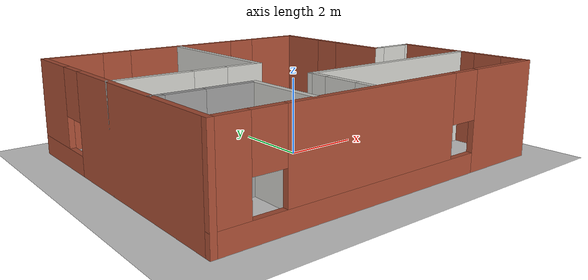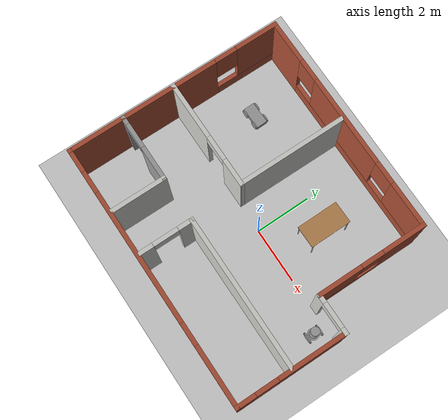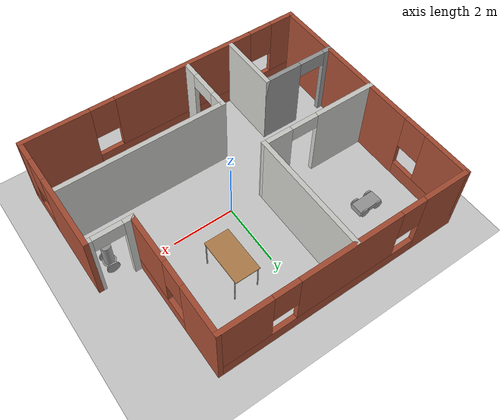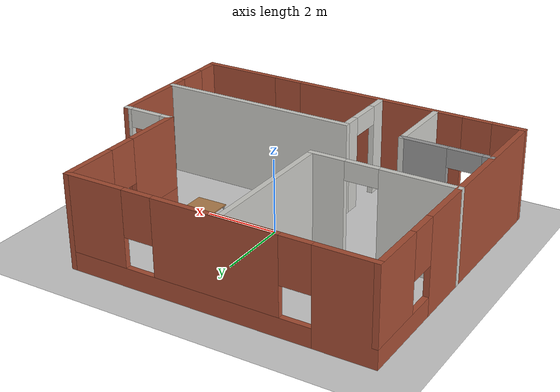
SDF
<sdf version="1.6">
 <world name="default">
  <plugin name="welcome" filename="libwelcome.so"/>
  <light name="sun" type="directional">
   <pose>0 0 10 0 -0 0</pose>
   <diffuse>0.8 0.8 0.8 1</diffuse>
   <specular>0.2 0.2 0.2 1</specular>
   <attenuation>
    <range>1000</range>
    <constant>0.9</constant>
    <linear>0.01</linear>
    <quadratic>0.001</quadratic>
   </attenuation>
   <direction>-0.5 0.1 -0.9</direction>
   <spot><inner_angle>0</inner_angle><outer_angle>0</outer_angle><falloff>0</falloff></spot>
  </light>
  <model name="ground_plane">
   <static>1</static>
   <link name="link">
    <collision name="collision">
     <geometry><plane><normal>0 0 1</normal><size>100 100</size></plane></geometry>
     <surface>
      <contact><collide_bitmask>65535</collide_bitmask></contact>
      <friction><ode><mu>100</mu><mu2>50</mu2></ode></friction>
     </surface>
    </collision>
    <visual name="visual">
     <cast_shadows>0</cast_shadows>
     <geometry><plane><normal>0 0 1</normal><size>100 100</size></plane></geometry>
     <material>
      <script><uri>file://media/materials/scripts/gazebo.material</uri><name>Gazebo/Grey</name></script>
     </material>
    </visual>
   </link>
  </model>
  <gravity>0 0 -9.8</gravity>
  <magnetic_field>6e-06 2.3e-05 -4.2e-05</magnetic_field>
  <atmosphere type="adiabatic"/>
  <physics type="ode">
   <max_step_size>0.001</max_step_size>
   <real_time_factor>1</real_time_factor>
   <real_time_update_rate>1000</real_time_update_rate>
  </physics>
  <scene><ambient>0.4 0.4 0.4 1</ambient><background>0.7 0.7 0.7 1</background><shadows>1</shadows></scene>
  <spherical_coordinates>
   <surface_model>EARTH_WGS84</surface_model>
   <latitude_deg>0</latitude_deg>
   <longitude_deg>0</longitude_deg>
   <elevation>0</elevation>
   <heading_deg>0</heading_deg>
  </spherical_coordinates>
  <model name="PROJECT1">
   <model name="PROJECT1">
    <model name="balancerobot">
     <link name="link_0">
      <inertial>
       <mass>1</mass>
       <inertia><ixx>0.145833</ixx><ixy>0</ixy><ixz>0</ixz><iyy>0.145833</iyy><iyz>0</iyz><izz>0.125</izz></inertia>
      </inertial>
      <pose>0.020222 -0.037562 -0.115563 0 -0 0</pose>
      <visual name="visual">
       <geometry><cylinder><radius>0.2</radius><length>0.01</length></cylinder></geometry>
       <material>
        <lighting>1</lighting>
        <script><uri>file://media/materials/scripts/gazebo.material</uri><name>Gazebo/Grey</name></script>
        <shader type="vertex"><normal_map>__default__</normal_map></shader>
        <ambient>0.3 0.3 0.3 1</ambient>
        <diffuse>0.7 0.7 0.7 1</diffuse>
        <specular>0.01 0.01 0.01 1</specular>
        <emissive>0 0 0 1</emissive>
       </material>
      </visual>
      <collision name="collision">
       <geometry><cylinder><radius>0.2</radius><length>0.01</length></cylinder></geometry>
       <surface>
        <friction>
         <ode><mu>1</mu><mu2>1</mu2><fdir1>0 0 0</fdir1><slip1>0</slip1><slip2>0</slip2></ode>
         <torsional>
          <coefficient>1</coefficient>
          <patch_radius>0</patch_radius>
          <surface_radius>0</surface_radius>
          <use_patch_radius>1</use_patch_radius>
          <ode><slip>0</slip></ode>
         </torsional>
        </friction>
        <bounce><restitution_coefficient>0</restitution_coefficient><threshold>1e+06</threshold></bounce>
        <contact>
         <collide_without_contact>0</collide_without_contact>
         <collide_without_contact_bitmask>1</collide_without_contact_bitmask>
         <collide_bitmask>1</collide_bitmask>
         <ode>
          <soft_cfm>0</soft_cfm>
          <soft_erp>0.2</soft_erp>
          <kp>1e+13</kp>
          <kd>1</kd>
          <max_vel>0.01</max_vel>
          <min_depth>0</min_depth>
         </ode>
         <bullet>
          <split_impulse>1</split_impulse>
          <split_impulse_penetration_threshold>-0.01</split_impulse_penetration_threshold>
          <soft_cfm>0</soft_cfm>
          <soft_erp>0.2</soft_erp>
          <kp>1e+13</kp>
          <kd>1</kd>
         </bullet>
        </contact>
       </surface>
      </collision>
     </link>
     <link name="link_1">
      <inertial>
       <mass>1</mass>
       <inertia><ixx>0.145833</ixx><ixy>0</ixy><ixz>0</ixz><iyy>0.145833</iyy><iyz>0</iyz><izz>0.125</izz></inertia>
      </inertial>
      <pose>0.020222 -0.187562 -0.165183 1.5707 -0 0</pose>
      <visual name="visual">
       <geometry><cylinder><radius>0.045</radius><length>0.11</length></cylinder></geometry>
       <material>
        <lighting>1</lighting>
        <script><uri>file://media/materials/scripts/gazebo.material</uri><name>Gazebo/Grey</name></script>
        <shader type="vertex"><normal_map>__default__</normal_map></shader>
        <ambient>0.3 0.3 0.3 1</ambient>
        <diffuse>0.7 0.7 0.7 1</diffuse>
        <specular>0.01 0.01 0.01 1</specular>
        <emissive>0 0 0 1</emissive>
       </material>
      </visual>
      <collision name="collision">
       <geometry><cylinder><radius>0.045</radius><length>0.11</length></cylinder></geometry>
       <surface>
        <friction>
         <ode><mu>1</mu><mu2>1</mu2><fdir1>0 0 0</fdir1><slip1>0</slip1><slip2>0</slip2></ode>
         <torsional>
          <coefficient>1</coefficient>
          <patch_radius>0</patch_radius>
          <surface_radius>0</surface_radius>
          <use_patch_radius>1</use_patch_radius>
          <ode><slip>0</slip></ode>
         </torsional>
        </friction>
        <bounce><restitution_coefficient>0</restitution_coefficient><threshold>1e+06</threshold></bounce>
        <contact>
         <collide_without_contact>0</collide_without_contact>
         <collide_without_contact_bitmask>1</collide_without_contact_bitmask>
         <collide_bitmask>1</collide_bitmask>
         <ode>
          <soft_cfm>0</soft_cfm>
          <soft_erp>0.2</soft_erp>
          <kp>1e+13</kp>
          <kd>1</kd>
          <max_vel>0.01</max_vel>
          <min_depth>0</min_depth>
         </ode>
         <bullet>
          <split_impulse>1</split_impulse>
          <split_impulse_penetration_threshold>-0.01</split_impulse_penetration_threshold>
          <soft_cfm>0</soft_cfm>
          <soft_erp>0.2</soft_erp>
          <kp>1e+13</kp>
          <kd>1</kd>
         </bullet>
        </contact>
       </surface>
      </collision>
     </link>
     <link name="link_1_clone">
      <inertial>
       <mass>1</mass>
       <inertia><ixx>0.145833</ixx><ixy>0</ixy><ixz>0</ixz><iyy>0.145833</iyy><iyz>0</iyz><izz>0.125</izz></inertia>
      </inertial>
      <pose>0.020222 0.112438 -0.165563 1.5707 -0 0</pose>
      <visual name="visual">
       <geometry><cylinder><radius>0.045</radius><length>0.11</length></cylinder></geometry>
       <material>
        <lighting>1</lighting>
        <script><uri>file://media/materials/scripts/gazebo.material</uri><name>Gazebo/Grey</name></script>
        <shader type="vertex"><normal_map>__default__</normal_map></shader>
        <ambient>0.3 0.3 0.3 1</ambient>
        <diffuse>0.7 0.7 0.7 1</diffuse>
        <specular>0.01 0.01 0.01 1</specular>
        <emissive>0 0 0 1</emissive>
       </material>
      </visual>
      <collision name="collision">
       <geometry><cylinder><radius>0.045</radius><length>0.11</length></cylinder></geometry>
       <surface>
        <friction>
         <ode><mu>1</mu><mu2>1</mu2><fdir1>0 0 0</fdir1><slip1>0</slip1><slip2>0</slip2></ode>
         <torsional>
          <coefficient>1</coefficient>
          <patch_radius>0</patch_radius>
          <surface_radius>0</surface_radius>
          <use_patch_radius>1</use_patch_radius>
          <ode><slip>0</slip></ode>
         </torsional>
        </friction>
        <bounce><restitution_coefficient>0</restitution_coefficient><threshold>1e+06</threshold></bounce>
        <contact>
         <collide_without_contact>0</collide_without_contact>
         <collide_without_contact_bitmask>1</collide_without_contact_bitmask>
         <collide_bitmask>1</collide_bitmask>
         <ode>
          <soft_cfm>0</soft_cfm>
          <soft_erp>0.2</soft_erp>
          <kp>1e+13</kp>
          <kd>1</kd>
          <max_vel>0.01</max_vel>
          <min_depth>0</min_depth>
         </ode>
         <bullet>
          <split_impulse>1</split_impulse>
          <split_impulse_penetration_threshold>-0.01</split_impulse_penetration_threshold>
          <soft_cfm>0</soft_cfm>
          <soft_erp>0.2</soft_erp>
          <kp>1e+13</kp>
          <kd>1</kd>
         </bullet>
        </contact>
       </surface>
      </collision>
     </link>
     <link name="link_2">
      <inertial>
       <mass>1</mass>
       <inertia><ixx>0.145833</ixx><ixy>0</ixy><ixz>0</ixz><iyy>0.145833</iyy><iyz>0</iyz><izz>0.125</izz></inertia>
      </inertial>
      <pose>0.020222 -0.267562 -0.165175 1.5707 -0 0</pose>
      <visual name="visual">
       <geometry><cylinder><radius>0.2</radius><length>0.05</length></cylinder></geometry>
       <material>
        <lighting>1</lighting>
        <script><uri>file://media/materials/scripts/gazebo.material</uri><name>Gazebo/Grey</name></script>
        <shader type="vertex"><normal_map>__default__</normal_map></shader>
        <ambient>0.3 0.3 0.3 1</ambient>
        <diffuse>0.7 0.7 0.7 1</diffuse>
        <specular>0.01 0.01 0.01 1</specular>
        <emissive>0 0 0 1</emissive>
       </material>
      </visual>
      <collision name="collision">
       <geometry><cylinder><radius>0.2</radius><length>0.05</length></cylinder></geometry>
       <surface>
        <friction>
         <ode><mu>1</mu><mu2>1</mu2><fdir1>0 0 0</fdir1><slip1>0</slip1><slip2>0</slip2></ode>
         <torsional>
          <coefficient>1</coefficient>
          <patch_radius>0</patch_radius>
          <surface_radius>0</surface_radius>
          <use_patch_radius>1</use_patch_radius>
          <ode><slip>0</slip></ode>
         </torsional>
        </friction>
        <bounce><restitution_coefficient>0</restitution_coefficient><threshold>1e+06</threshold></bounce>
        <contact>
         <collide_without_contact>0</collide_without_contact>
         <collide_without_contact_bitmask>1</collide_without_contact_bitmask>
         <collide_bitmask>1</collide_bitmask>
         <ode>
          <soft_cfm>0</soft_cfm>
          <soft_erp>0.2</soft_erp>
          <kp>1e+13</kp>
          <kd>1</kd>
          <max_vel>0.01</max_vel>
          <min_depth>0</min_depth>
         </ode>
         <bullet>
          <split_impulse>1</split_impulse>
          <split_impulse_penetration_threshold>-0.01</split_impulse_penetration_threshold>
          <soft_cfm>0</soft_cfm>
          <soft_erp>0.2</soft_erp>
          <kp>1e+13</kp>
          <kd>1</kd>
         </bullet>
        </contact>
       </surface>
      </collision>
     </link>
     <link name="link_2_clone">
      <inertial>
       <mass>1</mass>
       <inertia><ixx>0.145833</ixx><ixy>0</ixy><ixz>0</ixz><iyy>0.145833</iyy><iyz>0</iyz><izz>0.125</izz></inertia>
      </inertial>
      <pose>0.020222 0.192462 -0.165563 1.5707 -0 0</pose>
      <visual name="visual">
       <geometry><cylinder><radius>0.2</radius><length>0.05</length></cylinder></geometry>
       <material>
        <lighting>1</lighting>
        <script><uri>file://media/materials/scripts/gazebo.material</uri><name>Gazebo/Grey</name></script>
        <shader type="vertex"><normal_map>__default__</normal_map></shader>
        <ambient>0.3 0.3 0.3 1</ambient>
        <diffuse>0.7 0.7 0.7 1</diffuse>
        <specular>0.01 0.01 0.01 1</specular>
        <emissive>0 0 0 1</emissive>
       </material>
      </visual>
      <collision name="collision">
       <geometry><cylinder><radius>0.2</radius><length>0.05</length></cylinder></geometry>
       <surface>
        <friction>
         <ode><mu>1</mu><mu2>1</mu2><fdir1>0 0 0</fdir1><slip1>0</slip1><slip2>0</slip2></ode>
         <torsional>
          <coefficient>1</coefficient>
          <patch_radius>0</patch_radius>
          <surface_radius>0</surface_radius>
          <use_patch_radius>1</use_patch_radius>
          <ode><slip>0</slip></ode>
         </torsional>
        </friction>
        <bounce><restitution_coefficient>0</restitution_coefficient><threshold>1e+06</threshold></bounce>
        <contact>
         <collide_without_contact>0</collide_without_contact>
         <collide_without_contact_bitmask>1</collide_without_contact_bitmask>
         <collide_bitmask>1</collide_bitmask>
         <ode>
          <soft_cfm>0</soft_cfm>
          <soft_erp>0.2</soft_erp>
          <kp>1e+13</kp>
          <kd>1</kd>
          <max_vel>0.01</max_vel>
          <min_depth>0</min_depth>
         </ode>
         <bullet>
          <split_impulse>1</split_impulse>
          <split_impulse_penetration_threshold>-0.01</split_impulse_penetration_threshold>
          <soft_cfm>0</soft_cfm>
          <soft_erp>0.2</soft_erp>
          <kp>1e+13</kp>
          <kd>1</kd>
         </bullet>
        </contact>
       </surface>
      </collision>
     </link>
     <link name="link_3">
      <inertial>
       <mass>1</mass>
       <inertia><ixx>0.145833</ixx><ixy>0</ixy><ixz>0</ixz><iyy>0.145833</iyy><iyz>0</iyz><izz>0.125</izz></inertia>
      </inertial>
      <pose>0.020222 -0.037562 0.277437 0 -0 0</pose>
      <visual name="visual">
       <geometry><cylinder><radius>0.15</radius><length>0.8</length></cylinder></geometry>
       <material>
        <lighting>1</lighting>
        <script><uri>file://media/materials/scripts/gazebo.material</uri><name>Gazebo/Grey</name></script>
        <shader type="vertex"><normal_map>__default__</normal_map></shader>
        <ambient>0.3 0.3 0.3 1</ambient>
        <diffuse>0.7 0.7 0.7 1</diffuse>
        <specular>0.01 0.01 0.01 1</specular>
        <emissive>0 0 0 1</emissive>
       </material>
      </visual>
      <collision name="collision">
       <geometry><cylinder><radius>0.15</radius><length>0.8</length></cylinder></geometry>
       <surface>
        <friction>
         <ode><mu>1</mu><mu2>1</mu2><fdir1>0 0 0</fdir1><slip1>0</slip1><slip2>0</slip2></ode>
         <torsional>
          <coefficient>1</coefficient>
          <patch_radius>0</patch_radius>
          <surface_radius>0</surface_radius>
          <use_patch_radius>1</use_patch_radius>
          <ode><slip>0</slip></ode>
         </torsional>
        </friction>
        <bounce><restitution_coefficient>0</restitution_coefficient><threshold>1e+06</threshold></bounce>
        <contact>
         <collide_without_contact>0</collide_without_contact>
         <collide_without_contact_bitmask>1</collide_without_contact_bitmask>
         <collide_bitmask>1</collide_bitmask>
         <ode>
          <soft_cfm>0</soft_cfm>
          <soft_erp>0.2</soft_erp>
          <kp>1e+13</kp>
          <kd>1</kd>
          <max_vel>0.01</max_vel>
          <min_depth>0</min_depth>
         </ode>
         <bullet>
          <split_impulse>1</split_impulse>
          <split_impulse_penetration_threshold>-0.01</split_impulse_penetration_threshold>
          <soft_cfm>0</soft_cfm>
          <soft_erp>0.2</soft_erp>
          <kp>1e+13</kp>
          <kd>1</kd>
         </bullet>
        </contact>
       </surface>
      </collision>
     </link>
     <joint name="link_0_JOINT_2" type="fixed">
      <parent>link_0</parent>
      <child>link_1</child>
      <physics>
       <ode><limit><cfm>0</cfm><erp>0.2</erp></limit><suspension><cfm>0</cfm><erp>0.2</erp></suspension></ode>
      </physics>
     </joint>
     <joint name="link_0_JOINT_3" type="fixed">
      <parent>link_0</parent>
      <child>link_1_clone</child>
      <physics>
       <ode><limit><cfm>0</cfm><erp>0.2</erp></limit><suspension><cfm>0</cfm><erp>0.2</erp></suspension></ode>
      </physics>
     </joint>
     <joint name="link_0_JOINT_6" type="fixed">
      <parent>link_0</parent>
      <child>link_3</child>
      <physics>
       <ode><limit><cfm>0</cfm><erp>0.2</erp></limit><suspension><cfm>0</cfm><erp>0.2</erp></suspension></ode>
      </physics>
     </joint>
     <joint name="link_1_JOINT_4" type="revolute">
      <parent>link_1</parent>
      <child>link_2</child>
      <pose>-0 0 -0.02 0 -0 0</pose>
      <axis>
       <xyz>0 0 1</xyz>
       <limit>
        <lower>-1.79769e+308</lower>
        <upper>1.79769e+308</upper>
        <effort>-1</effort>
        <velocity>-1</velocity>
       </limit>
       <dynamics>
        <spring_reference>0</spring_reference>
        <spring_stiffness>0</spring_stiffness>
        <damping>0</damping>
       </dynamics>
      </axis>
      <physics>
       <ode><limit><cfm>0</cfm><erp>0.2</erp></limit><suspension><cfm>0</cfm><erp>0.2</erp></suspension></ode>
      </physics>
     </joint>
     <joint name="link_1_clone_JOINT_5" type="revolute">
      <parent>link_1_clone</parent>
      <child>link_2_clone</child>
      <axis>
       <xyz>1 0 0</xyz>
       <limit>
        <lower>-1.79769e+308</lower>
        <upper>1.79769e+308</upper>
        <effort>-1</effort>
        <velocity>-1</velocity>
       </limit>
       <dynamics>
        <spring_reference>0</spring_reference>
        <spring_stiffness>0</spring_stiffness>
        <damping>0</damping>
       </dynamics>
      </axis>
      <physics>
       <ode><limit><cfm>0</cfm><erp>0.2</erp></limit><suspension><cfm>0</cfm><erp>0.2</erp></suspension></ode>
      </physics>
     </joint>
     <static>0</static>
     <pose>2.02516 -0.247813 0.181894 0 -0 0</pose>
    </model>
    <model name="project1">
     <pose>-2.02515 0.247813 -0.181894 0 -0 0</pose>
     <link name="Wall_0">
      <pose>-0.675 3.85 0 0 -0 0</pose>
      <visual name="Wall_0_Visual_0">
       <pose>-3.28349 0 1.25 0 -0 0</pose>
       <geometry><box><size>1.58303 0.15 2.5</size></box></geometry>
       <material>
        <script><uri>file://media/materials/scripts/gazebo.material</uri><name>Gazebo/Bricks</name></script>
        <ambient>1 1 1 1</ambient>
       </material>
       <meta><layer>0</layer></meta>
      </visual>
      <collision name="Wall_0_Collision_0">
       <geometry><box><size>1.58303 0.15 2.5</size></box></geometry>
       <pose>-3.28349 0 1.25 0 -0 0</pose>
      </collision>
      <visual name="Wall_0_Visual_1">
       <pose>0.791513 0 0.25 0 -0 0</pose>
       <geometry><box><size>6.56697 0.15 0.5</size></box></geometry>
       <material>
        <script><uri>file://media/materials/scripts/gazebo.material</uri><name>Gazebo/Bricks</name></script>
        <ambient>1 1 1 1</ambient>
       </material>
       <meta><layer>0</layer></meta>
      </visual>
      <collision name="Wall_0_Collision_1">
       <geometry><box><size>6.56697 0.15 0.5</size></box></geometry>
       <pose>0.791513 0 0.25 0 -0 0</pose>
      </collision>
      <visual name="Wall_0_Visual_2">
       <pose>-0.042824 0 1.5 0 -0 0</pose>
       <geometry><box><size>3.2983 0.15 2</size></box></geometry>
       <material>
        <script><uri>file://media/materials/scripts/gazebo.material</uri><name>Gazebo/Bricks</name></script>
        <ambient>1 1 1 1</ambient>
       </material>
       <meta><layer>0</layer></meta>
      </visual>
      <collision name="Wall_0_Collision_2">
       <geometry><box><size>3.2983 0.15 2</size></box></geometry>
       <pose>-0.042824 0 1.5 0 -0 0</pose>
      </collision>
      <visual name="Wall_0_Visual_3">
       <pose>3.24066 0 1.5 0 -0 0</pose>
       <geometry><box><size>1.66867 0.15 2</size></box></geometry>
       <material>
        <script><uri>file://media/materials/scripts/gazebo.material</uri><name>Gazebo/Bricks</name></script>
        <ambient>1 1 1 1</ambient>
       </material>
       <meta><layer>0</layer></meta>
      </visual>
      <collision name="Wall_0_Collision_3">
       <geometry><box><size>1.66867 0.15 2</size></box></geometry>
       <pose>3.24066 0 1.5 0 -0 0</pose>
      </collision>
      <visual name="Wall_0_Visual_4">
       <pose>-2.09197 0 1.9 0 -0 0</pose>
       <geometry><box><size>0.8 0.15 1.2</size></box></geometry>
       <material>
        <script><uri>file://media/materials/scripts/gazebo.material</uri><name>Gazebo/Bricks</name></script>
        <ambient>1 1 1 1</ambient>
       </material>
       <meta><layer>0</layer></meta>
      </visual>
      <collision name="Wall_0_Collision_4">
       <geometry><box><size>0.8 0.15 1.2</size></box></geometry>
       <pose>-2.09197 0 1.9 0 -0 0</pose>
      </collision>
      <visual name="Wall_0_Visual_5">
       <pose>2.00633 0 1.9 0 -0 0</pose>
       <geometry><box><size>0.8 0.15 1.2</size></box></geometry>
       <material>
        <script><uri>file://media/materials/scripts/gazebo.material</uri><name>Gazebo/Bricks</name></script>
        <ambient>1 1 1 1</ambient>
       </material>
       <meta><layer>0</layer></meta>
      </visual>
      <collision name="Wall_0_Collision_5">
       <geometry><box><size>0.8 0.15 1.2</size></box></geometry>
       <pose>2.00633 0 1.9 0 -0 0</pose>
      </collision>
     </link>
     <link name="Wall_11">
      <collision name="Wall_11_Collision">
       <geometry><box><size>4 0.15 2.5</size></box></geometry>
       <pose>0 0 1.25 0 -0 0</pose>
      </collision>
      <visual name="Wall_11_Visual">
       <pose>0 0 1.25 0 -0 0</pose>
       <geometry><box><size>4 0.15 2.5</size></box></geometry>
       <material>
        <script><uri>file://media/materials/scripts/gazebo.material</uri><name>Gazebo/CeilingTiled</name></script>
        <ambient>1 1 1 1</ambient>
       </material>
       <meta><layer>0</layer></meta>
      </visual>
      <pose>-0.846184 1.90708 0 0 -0 -1.5707</pose>
     </link>
     <link name="Wall_12">
      <pose>-2.7605 -0.018 0 0 -0 3.14159</pose>
      <visual name="Wall_12_Visual_0">
       <pose>-1.48873 0 1.25 0 -0 0</pose>
       <geometry><box><size>1.00155 0.15 2.5</size></box></geometry>
       <material>
        <script><uri>file://media/materials/scripts/gazebo.material</uri><name>Gazebo/CeilingTiled</name></script>
        <ambient>1 1 1 1</ambient>
       </material>
       <meta><layer>0</layer></meta>
      </visual>
      <collision name="Wall_12_Collision_0">
       <geometry><box><size>1.00155 0.15 2.5</size></box></geometry>
       <pose>-1.48873 0 1.25 0 -0 0</pose>
      </collision>
      <visual name="Wall_12_Visual_1">
       <pose>0.950775 0 1.25 0 -0 0</pose>
       <geometry><box><size>2.07745 0.15 2.5</size></box></geometry>
       <material>
        <script><uri>file://media/materials/scripts/gazebo.material</uri><name>Gazebo/CeilingTiled</name></script>
        <ambient>1 1 1 1</ambient>
       </material>
       <meta><layer>0</layer></meta>
      </visual>
      <collision name="Wall_12_Collision_1">
       <geometry><box><size>2.07745 0.15 2.5</size></box></geometry>
       <pose>0.950775 0 1.25 0 -0 0</pose>
      </collision>
      <visual name="Wall_12_Visual_2">
       <pose>-0.537951 0 2.25 0 -0 0</pose>
       <geometry><box><size>0.9 0.15 0.5</size></box></geometry>
       <material>
        <script><uri>file://media/materials/scripts/gazebo.material</uri><name>Gazebo/CeilingTiled</name></script>
        <ambient>1 1 1 1</ambient>
       </material>
       <meta><layer>0</layer></meta>
      </visual>
      <collision name="Wall_12_Collision_2">
       <geometry><box><size>0.9 0.15 0.5</size></box></geometry>
       <pose>-0.537951 0 2.25 0 -0 0</pose>
      </collision>
     </link>
     <link name="Wall_14">
      <pose>-3.48233 -1.89942 0 0 -0 0</pose>
      <visual name="Wall_14_Visual_0">
       <pose>-1.09723 0 1.25 0 -0 0</pose>
       <geometry><box><size>0.305529 0.15 2.5</size></box></geometry>
       <material>
        <script><uri>file://media/materials/scripts/gazebo.material</uri><name>Gazebo/Grey</name></script>
        <ambient>1 1 1 1</ambient>
       </material>
       <meta><layer>0</layer></meta>
      </visual>
      <collision name="Wall_14_Collision_0">
       <geometry><box><size>0.305529 0.15 2.5</size></box></geometry>
       <pose>-1.09723 0 1.25 0 -0 0</pose>
      </collision>
      <visual name="Wall_14_Visual_1">
       <pose>0.602765 0 1.25 0 -0 0</pose>
       <geometry><box><size>1.29447 0.15 2.5</size></box></geometry>
       <material>
        <script><uri>file://media/materials/scripts/gazebo.material</uri><name>Gazebo/Grey</name></script>
        <ambient>1 1 1 1</ambient>
       </material>
       <meta><layer>0</layer></meta>
      </visual>
      <collision name="Wall_14_Collision_1">
       <geometry><box><size>1.29447 0.15 2.5</size></box></geometry>
       <pose>0.602765 0 1.25 0 -0 0</pose>
      </collision>
      <visual name="Wall_14_Visual_2">
       <pose>-0.494471 0 2.25 0 -0 0</pose>
       <geometry><box><size>0.9 0.15 0.5</size></box></geometry>
       <material>
        <script><uri>file://media/materials/scripts/gazebo.material</uri><name>Gazebo/Grey</name></script>
        <ambient>1 1 1 1</ambient>
       </material>
       <meta><layer>0</layer></meta>
      </visual>
      <collision name="Wall_14_Collision_2">
       <geometry><box><size>0.9 0.15 0.5</size></box></geometry>
       <pose>-0.494471 0 2.25 0 -0 0</pose>
      </collision>
     </link>
     <link name="Wall_15">
      <collision name="Wall_15_Collision">
       <geometry><box><size>2 0.15 2.5</size></box></geometry>
       <pose>0 0 1.25 0 -0 0</pose>
      </collision>
      <visual name="Wall_15_Visual">
       <pose>0 0 1.25 0 -0 0</pose>
       <geometry><box><size>2 0.15 2.5</size></box></geometry>
       <material>
        <script><uri>file://media/materials/scripts/gazebo.material</uri><name>Gazebo/CeilingTiled</name></script>
        <ambient>1 1 1 1</ambient>
       </material>
       <meta><layer>0</layer></meta>
      </visual>
      <pose>-2.30733 -2.82442 0 0 -0 -1.5708</pose>
     </link>
     <link name="Wall_18">
      <collision name="Wall_18_Collision">
       <geometry><box><size>5.5 0.15 2.5</size></box></geometry>
       <pose>0 0 1.25 0 -0 0</pose>
      </collision>
      <visual name="Wall_18_Visual">
       <pose>0 0 1.25 0 -0 0</pose>
       <geometry><box><size>5.5 0.15 2.5</size></box></geometry>
       <material>
        <script><uri>file://media/materials/scripts/gazebo.material</uri><name>Gazebo/CeilingTiled</name></script>
        <ambient>1 1 1 1</ambient>
       </material>
       <meta><layer>0</layer></meta>
      </visual>
      <pose>1.95311 -1.89942 0 0 -0 3.14159</pose>
     </link>
     <link name="Wall_19">
      <pose>-0.721888 -2.82442 0 0 -0 -1.5708</pose>
      <visual name="Wall_19_Visual_0">
       <pose>-0.71113 0 1.25 0 -0 0</pose>
       <geometry><box><size>0.577741 0.15 2.5</size></box></geometry>
       <material>
        <script><uri>file://media/materials/scripts/gazebo.material</uri><name>Gazebo/CeilingTiled</name></script>
        <ambient>1 1 1 1</ambient>
       </material>
       <meta><layer>0</layer></meta>
      </visual>
      <collision name="Wall_19_Collision_0">
       <geometry><box><size>0.577741 0.15 2.5</size></box></geometry>
       <pose>-0.71113 0 1.25 0 -0 0</pose>
      </collision>
      <visual name="Wall_19_Visual_1">
       <pose>0.73887 0 1.25 0 -0 0</pose>
       <geometry><box><size>0.522259 0.15 2.5</size></box></geometry>
       <material>
        <script><uri>file://media/materials/scripts/gazebo.material</uri><name>Gazebo/CeilingTiled</name></script>
        <ambient>1 1 1 1</ambient>
       </material>
       <meta><layer>0</layer></meta>
      </visual>
      <collision name="Wall_19_Collision_1">
       <geometry><box><size>0.522259 0.15 2.5</size></box></geometry>
       <pose>0.73887 0 1.25 0 -0 0</pose>
      </collision>
      <visual name="Wall_19_Visual_2">
       <pose>0.027741 0 2.25 0 -0 0</pose>
       <geometry><box><size>0.9 0.15 0.5</size></box></geometry>
       <material>
        <script><uri>file://media/materials/scripts/gazebo.material</uri><name>Gazebo/CeilingTiled</name></script>
        <ambient>1 1 1 1</ambient>
       </material>
       <meta><layer>0</layer></meta>
      </visual>
      <collision name="Wall_19_Collision_2">
       <geometry><box><size>0.9 0.15 0.5</size></box></geometry>
       <pose>0.027741 0 2.25 0 -0 0</pose>
      </collision>
     </link>
     <link name="Wall_2">
      <pose>3.325 1.925 0 0 -0 -1.5708</pose>
      <visual name="Wall_2_Visual_0">
       <pose>-1.21596 0 1.25 0 -0 0</pose>
       <geometry><box><size>1.56809 0.15 2.5</size></box></geometry>
       <material>
        <script><uri>file://media/materials/scripts/gazebo.material</uri><name>Gazebo/Bricks</name></script>
        <ambient>1 1 1 1</ambient>
       </material>
       <meta><layer>0</layer></meta>
      </visual>
      <collision name="Wall_2_Collision_0">
       <geometry><box><size>1.56809 0.15 2.5</size></box></geometry>
       <pose>-1.21596 0 1.25 0 -0 0</pose>
      </collision>
      <visual name="Wall_2_Visual_1">
       <pose>0.784043 0 0.25 0 -0 0</pose>
       <geometry><box><size>2.43191 0.15 0.5</size></box></geometry>
       <material>
        <script><uri>file://media/materials/scripts/gazebo.material</uri><name>Gazebo/Bricks</name></script>
        <ambient>1 1 1 1</ambient>
       </material>
       <meta><layer>0</layer></meta>
      </visual>
      <collision name="Wall_2_Collision_1">
       <geometry><box><size>2.43191 0.15 0.5</size></box></geometry>
       <pose>0.784043 0 0.25 0 -0 0</pose>
      </collision>
      <visual name="Wall_2_Visual_2">
       <pose>1.18404 0 1.5 0 -0 0</pose>
       <geometry><box><size>1.63191 0.15 2</size></box></geometry>
       <material>
        <script><uri>file://media/materials/scripts/gazebo.material</uri><name>Gazebo/Bricks</name></script>
        <ambient>1 1 1 1</ambient>
       </material>
       <meta><layer>0</layer></meta>
      </visual>
      <collision name="Wall_2_Collision_2">
       <geometry><box><size>1.63191 0.15 2</size></box></geometry>
       <pose>1.18404 0 1.5 0 -0 0</pose>
      </collision>
      <visual name="Wall_2_Visual_3">
       <pose>-0.031914 0 1.9 0 -0 0</pose>
       <geometry><box><size>0.8 0.15 1.2</size></box></geometry>
       <material>
        <script><uri>file://media/materials/scripts/gazebo.material</uri><name>Gazebo/Bricks</name></script>
        <ambient>1 1 1 1</ambient>
       </material>
       <meta><layer>0</layer></meta>
      </visual>
      <collision name="Wall_2_Collision_3">
       <geometry><box><size>0.8 0.15 1.2</size></box></geometry>
       <pose>-0.031914 0 1.9 0 -0 0</pose>
      </collision>
     </link>
     <link name="Wall_3">
      <pose>4 0 0 0 -0 0</pose>
      <visual name="Wall_3_Visual_0">
       <pose>-0.575232 0 1.25 0 -0 0</pose>
       <geometry><box><size>0.349537 0.15 2.5</size></box></geometry>
       <material>
        <script><uri>file://media/materials/scripts/gazebo.material</uri><name>Gazebo/CeilingTiled</name></script>
        <ambient>1 1 1 1</ambient>
       </material>
       <meta><layer>0</layer></meta>
      </visual>
      <collision name="Wall_3_Collision_0">
       <geometry><box><size>0.349537 0.15 2.5</size></box></geometry>
       <pose>-0.575232 0 1.25 0 -0 0</pose>
      </collision>
      <visual name="Wall_3_Visual_1">
       <pose>0.624768 0 1.25 0 -0 0</pose>
       <geometry><box><size>0.250463 0.15 2.5</size></box></geometry>
       <material>
        <script><uri>file://media/materials/scripts/gazebo.material</uri><name>Gazebo/CeilingTiled</name></script>
        <ambient>1 1 1 1</ambient>
       </material>
       <meta><layer>0</layer></meta>
      </visual>
      <collision name="Wall_3_Collision_1">
       <geometry><box><size>0.250463 0.15 2.5</size></box></geometry>
       <pose>0.624768 0 1.25 0 -0 0</pose>
      </collision>
      <visual name="Wall_3_Visual_2">
       <pose>0.049537 0 2.25 0 -0 0</pose>
       <geometry><box><size>0.9 0.15 0.5</size></box></geometry>
       <material>
        <script><uri>file://media/materials/scripts/gazebo.material</uri><name>Gazebo/CeilingTiled</name></script>
        <ambient>1 1 1 1</ambient>
       </material>
       <meta><layer>0</layer></meta>
      </visual>
      <collision name="Wall_3_Collision_2">
       <geometry><box><size>0.9 0.15 0.5</size></box></geometry>
       <pose>0.049537 0 2.25 0 -0 0</pose>
      </collision>
     </link>
     <link name="Wall_5">
      <pose>4.675 -1.925 0 0 -0 -1.5708</pose>
      <visual name="Wall_5_Visual_0">
       <pose>-0.766666 0 1.25 0 -0 0</pose>
       <geometry><box><size>2.46667 0.15 2.5</size></box></geometry>
       <material>
        <script><uri>file://media/materials/scripts/gazebo.material</uri><name>Gazebo/Bricks</name></script>
        <ambient>1 1 1 1</ambient>
       </material>
       <meta><layer>0</layer></meta>
      </visual>
      <collision name="Wall_5_Collision_0">
       <geometry><box><size>2.46667 0.15 2.5</size></box></geometry>
       <pose>-0.766666 0 1.25 0 -0 0</pose>
      </collision>
      <visual name="Wall_5_Visual_1">
       <pose>1.23333 0 0.25 0 -0 0</pose>
       <geometry><box><size>1.53333 0.15 0.5</size></box></geometry>
       <material>
        <script><uri>file://media/materials/scripts/gazebo.material</uri><name>Gazebo/Bricks</name></script>
        <ambient>1 1 1 1</ambient>
       </material>
       <meta><layer>0</layer></meta>
      </visual>
      <collision name="Wall_5_Collision_1">
       <geometry><box><size>1.53333 0.15 0.5</size></box></geometry>
       <pose>1.23333 0 0.25 0 -0 0</pose>
      </collision>
      <visual name="Wall_5_Visual_2">
       <pose>1.63333 0 1.5 0 -0 0</pose>
       <geometry><box><size>0.733332 0.15 2</size></box></geometry>
       <material>
        <script><uri>file://media/materials/scripts/gazebo.material</uri><name>Gazebo/Bricks</name></script>
        <ambient>1 1 1 1</ambient>
       </material>
       <meta><layer>0</layer></meta>
      </visual>
      <collision name="Wall_5_Collision_2">
       <geometry><box><size>0.733332 0.15 2</size></box></geometry>
       <pose>1.63333 0 1.5 0 -0 0</pose>
      </collision>
      <visual name="Wall_5_Visual_3">
       <pose>0.866668 0 1.9 0 -0 0</pose>
       <geometry><box><size>0.8 0.15 1.2</size></box></geometry>
       <material>
        <script><uri>file://media/materials/scripts/gazebo.material</uri><name>Gazebo/Bricks</name></script>
        <ambient>1 1 1 1</ambient>
       </material>
       <meta><layer>0</layer></meta>
      </visual>
      <collision name="Wall_5_Collision_3">
       <geometry><box><size>0.8 0.15 1.2</size></box></geometry>
       <pose>0.866668 0 1.9 0 -0 0</pose>
      </collision>
     </link>
     <link name="Wall_8">
      <pose>0 -3.85 0 0 -0 3.14159</pose>
      <visual name="Wall_8_Visual_0">
       <pose>-3.64142 0 1.25 0 -0 0</pose>
       <geometry><box><size>2.21716 0.15 2.5</size></box></geometry>
       <material>
        <script><uri>file://media/materials/scripts/gazebo.material</uri><name>Gazebo/Bricks</name></script>
        <ambient>1 1 1 1</ambient>
       </material>
       <meta><layer>0</layer></meta>
      </visual>
      <collision name="Wall_8_Collision_0">
       <geometry><box><size>2.21716 0.15 2.5</size></box></geometry>
       <pose>-3.64142 0 1.25 0 -0 0</pose>
      </collision>
      <visual name="Wall_8_Visual_1">
       <pose>1.10858 0 0.25 0 -0 0</pose>
       <geometry><box><size>7.28284 0.15 0.5</size></box></geometry>
       <material>
        <script><uri>file://media/materials/scripts/gazebo.material</uri><name>Gazebo/Bricks</name></script>
        <ambient>1 1 1 1</ambient>
       </material>
       <meta><layer>0</layer></meta>
      </visual>
      <collision name="Wall_8_Collision_1">
       <geometry><box><size>7.28284 0.15 0.5</size></box></geometry>
       <pose>1.10858 0 0.25 0 -0 0</pose>
      </collision>
      <visual name="Wall_8_Visual_2">
       <pose>0.664894 0 1.5 0 -0 0</pose>
       <geometry><box><size>4.79546 0.15 2</size></box></geometry>
       <material>
        <script><uri>file://media/materials/scripts/gazebo.material</uri><name>Gazebo/Bricks</name></script>
        <ambient>1 1 1 1</ambient>
       </material>
       <meta><layer>0</layer></meta>
      </visual>
      <collision name="Wall_8_Collision_2">
       <geometry><box><size>4.79546 0.15 2</size></box></geometry>
       <pose>0.664894 0 1.5 0 -0 0</pose>
      </collision>
      <visual name="Wall_8_Visual_3">
       <pose>4.30631 0 1.5 0 -0 0</pose>
       <geometry><box><size>0.887375 0.15 2</size></box></geometry>
       <material>
        <script><uri>file://media/materials/scripts/gazebo.material</uri><name>Gazebo/Bricks</name></script>
        <ambient>1 1 1 1</ambient>
       </material>
       <meta><layer>0</layer></meta>
      </visual>
      <collision name="Wall_8_Collision_3">
       <geometry><box><size>0.887375 0.15 2</size></box></geometry>
       <pose>4.30631 0 1.5 0 -0 0</pose>
      </collision>
      <visual name="Wall_8_Visual_4">
       <pose>-2.13284 0 1.9 0 -0 0</pose>
       <geometry><box><size>0.8 0.15 1.2</size></box></geometry>
       <material>
        <script><uri>file://media/materials/scripts/gazebo.material</uri><name>Gazebo/Bricks</name></script>
        <ambient>1 1 1 1</ambient>
       </material>
       <meta><layer>0</layer></meta>
      </visual>
      <collision name="Wall_8_Collision_4">
       <geometry><box><size>0.8 0.15 1.2</size></box></geometry>
       <pose>-2.13284 0 1.9 0 -0 0</pose>
      </collision>
      <visual name="Wall_8_Visual_5">
       <pose>3.46263 0 1.9 0 -0 0</pose>
       <geometry><box><size>0.8 0.15 1.2</size></box></geometry>
       <material>
        <script><uri>file://media/materials/scripts/gazebo.material</uri><name>Gazebo/Bricks</name></script>
        <ambient>1 1 1 1</ambient>
       </material>
       <meta><layer>0</layer></meta>
      </visual>
      <collision name="Wall_8_Collision_5">
       <geometry><box><size>0.8 0.15 1.2</size></box></geometry>
       <pose>3.46263 0 1.9 0 -0 0</pose>
      </collision>
     </link>
     <link name="Wall_9">
      <pose>-4.675 0 0 0 -0 1.5708</pose>
      <visual name="Wall_9_Visual_0">
       <pose>-1.19161 0 1.25 0 -0 0</pose>
       <geometry><box><size>5.46679 0.15 2.5</size></box></geometry>
       <material>
        <script><uri>file://media/materials/scripts/gazebo.material</uri><name>Gazebo/Bricks</name></script>
        <ambient>1 1 1 1</ambient>
       </material>
       <meta><layer>0</layer></meta>
      </visual>
      <collision name="Wall_9_Collision_0">
       <geometry><box><size>5.46679 0.15 2.5</size></box></geometry>
       <pose>-1.19161 0 1.25 0 -0 0</pose>
      </collision>
      <visual name="Wall_9_Visual_1">
       <pose>2.73339 0 0.25 0 -0 0</pose>
       <geometry><box><size>2.38321 0.15 0.5</size></box></geometry>
       <material>
        <script><uri>file://media/materials/scripts/gazebo.material</uri><name>Gazebo/Bricks</name></script>
        <ambient>1 1 1 1</ambient>
       </material>
       <meta><layer>0</layer></meta>
      </visual>
      <collision name="Wall_9_Collision_1">
       <geometry><box><size>2.38321 0.15 0.5</size></box></geometry>
       <pose>2.73339 0 0.25 0 -0 0</pose>
      </collision>
      <visual name="Wall_9_Visual_2">
       <pose>3.1334 0 1.5 0 -0 0</pose>
       <geometry><box><size>1.58321 0.15 2</size></box></geometry>
       <material>
        <script><uri>file://media/materials/scripts/gazebo.material</uri><name>Gazebo/Bricks</name></script>
        <ambient>1 1 1 1</ambient>
       </material>
       <meta><layer>0</layer></meta>
      </visual>
      <collision name="Wall_9_Collision_2">
       <geometry><box><size>1.58321 0.15 2</size></box></geometry>
       <pose>3.1334 0 1.5 0 -0 0</pose>
      </collision>
      <visual name="Wall_9_Visual_3">
       <pose>1.94179 0 1.9 0 -0 0</pose>
       <geometry><box><size>0.8 0.15 1.2</size></box></geometry>
       <material>
        <script><uri>file://media/materials/scripts/gazebo.material</uri><name>Gazebo/Bricks</name></script>
        <ambient>1 1 1 1</ambient>
       </material>
       <meta><layer>0</layer></meta>
      </visual>
      <collision name="Wall_9_Collision_3">
       <geometry><box><size>0.8 0.15 1.2</size></box></geometry>
       <pose>1.94179 0 1.9 0 -0 0</pose>
      </collision>
     </link>
     <static>1</static>
    </model>
    <static>0</static>
    <pose>-2e-06 -0 0 0 -0 0</pose>
   </model>
   <static>0</static>
   <pose>1.77851 -0.171548 0.183713 0.000804 -0 0</pose>
  </model>
  <model name="table">
   <static>1</static>
   <link name="link">
    <collision name="surface">
     <pose>0 0 1 0 -0 0</pose>
     <geometry><box><size>1.5 0.8 0.03</size></box></geometry>
     <surface><friction><ode><mu>0.6</mu><mu2>0.6</mu2></ode></friction></surface>
    </collision>
    <visual name="visual1">
     <pose>0 0 1 0 -0 0</pose>
     <geometry><box><size>1.5 0.8 0.03</size></box></geometry>
     <material>
      <script><uri>file://media/materials/scripts/gazebo.material</uri><name>Gazebo/Wood</name></script>
     </material>
    </visual>
    <collision name="front_left_leg">
     <pose>0.68 0.38 0.5 0 -0 0</pose>
     <geometry><cylinder><radius>0.02</radius><length>1</length></cylinder></geometry>
    </collision>
    <visual name="front_left_leg">
     <pose>0.68 0.38 0.5 0 -0 0</pose>
     <geometry><cylinder><radius>0.02</radius><length>1</length></cylinder></geometry>
     <material>
      <script><uri>file://media/materials/scripts/gazebo.material</uri><name>Gazebo/Grey</name></script>
     </material>
    </visual>
    <collision name="front_right_leg">
     <pose>0.68 -0.38 0.5 0 -0 0</pose>
     <geometry><cylinder><radius>0.02</radius><length>1</length></cylinder></geometry>
    </collision>
    <visual name="front_right_leg">
     <pose>0.68 -0.38 0.5 0 -0 0</pose>
     <geometry><cylinder><radius>0.02</radius><length>1</length></cylinder></geometry>
     <material>
      <script><uri>file://media/materials/scripts/gazebo.material</uri><name>Gazebo/Grey</name></script>
     </material>
    </visual>
    <collision name="back_right_leg">
     <pose>-0.68 -0.38 0.5 0 -0 0</pose>
     <geometry><cylinder><radius>0.02</radius><length>1</length></cylinder></geometry>
    </collision>
    <visual name="back_right_leg">
     <pose>-0.68 -0.38 0.5 0 -0 0</pose>
     <geometry><cylinder><radius>0.02</radius><length>1</length></cylinder></geometry>
     <material>
      <script><uri>file://media/materials/scripts/gazebo.material</uri><name>Gazebo/Grey</name></script>
     </material>
    </visual>
    <collision name="back_left_leg">
     <pose>-0.68 0.38 0.5 0 -0 0</pose>
     <geometry><cylinder><radius>0.02</radius><length>1</length></cylinder></geometry>
    </collision>
    <visual name="back_left_leg">
     <pose>-0.68 0.38 0.5 0 -0 0</pose>
     <geometry><cylinder><radius>0.02</radius><length>1</length></cylinder></geometry>
     <material>
      <script><uri>file://media/materials/scripts/gazebo.material</uri><name>Gazebo/Grey</name></script>
     </material>
    </visual>
   </link>
   <pose>1.1748 1.73789 0 0 0 -1.56262</pose>
  </model>
  <model name="4wheelRobot">
   <link name="link_0">
    <inertial>
     <mass>1</mass>
     <inertia>
      <ixx>0.166667</ixx>
      <ixy>0</ixy>
      <ixz>0</ixz>
      <iyy>0.166667</iyy>
      <iyz>0</iyz>
      <izz>0.166667</izz>
     </inertia>
    </inertial>
    <pose>0 0 -0.015999 0 -0 0</pose>
    <visual name="visual">
     <geometry><box><size>0.8 0.4 0.2</size></box></geometry>
     <material>
      <lighting>1</lighting>
      <script><uri>file://media/materials/scripts/gazebo.material</uri><name>Gazebo/Grey</name></script>
      <shader type="pixel"><normal_map>__default__</normal_map></shader>
      <ambient>0.3 0.3 0.3 1</ambient>
      <diffuse>0.7 0.7 0.7 1</diffuse>
      <specular>0.01 0.01 0.01 1</specular>
      <emissive>0 0 0 1</emissive>
     </material>
    </visual>
    <collision name="collision">
     <geometry><box><size>0.8 0.4 0.2</size></box></geometry>
     <surface>
      <friction>
       <ode><mu>1</mu><mu2>1</mu2><fdir1>0 0 0</fdir1><slip1>0</slip1><slip2>0</slip2></ode>
       <torsional>
        <coefficient>1</coefficient>
        <patch_radius>0</patch_radius>
        <surface_radius>0</surface_radius>
        <use_patch_radius>1</use_patch_radius>
        <ode><slip>0</slip></ode>
       </torsional>
      </friction>
      <bounce><restitution_coefficient>0</restitution_coefficient><threshold>1e+06</threshold></bounce>
      <contact>
       <collide_without_contact>0</collide_without_contact>
       <collide_without_contact_bitmask>1</collide_without_contact_bitmask>
       <collide_bitmask>1</collide_bitmask>
       <ode>
        <soft_cfm>0</soft_cfm>
        <soft_erp>0.2</soft_erp>
        <kp>1e+13</kp>
        <kd>1</kd>
        <max_vel>0.01</max_vel>
        <min_depth>0</min_depth>
       </ode>
       <bullet>
        <split_impulse>1</split_impulse>
        <split_impulse_penetration_threshold>-0.01</split_impulse_penetration_threshold>
        <soft_cfm>0</soft_cfm>
        <soft_erp>0.2</soft_erp>
        <kp>1e+13</kp>
        <kd>1</kd>
       </bullet>
      </contact>
     </surface>
    </collision>
   </link>
   <link name="link_1">
    <inertial>
     <mass>1</mass>
     <inertia><ixx>0.145833</ixx><ixy>0</ixy><ixz>0</ixz><iyy>0.145833</iyy><iyz>0</iyz><izz>0.125</izz></inertia>
    </inertial>
    <pose>0.25 -0.225014 0.003996 1.5707 -0 0</pose>
    <visual name="visual">
     <geometry><cylinder><radius>0.15</radius><length>0.05</length></cylinder></geometry>
     <material>
      <lighting>1</lighting>
      <script><uri>file://media/materials/scripts/gazebo.material</uri><name>Gazebo/Grey</name></script>
      <shader type="pixel"><normal_map>__default__</normal_map></shader>
      <ambient>0.3 0.3 0.3 1</ambient>
      <diffuse>0.7 0.7 0.7 1</diffuse>
      <specular>0.01 0.01 0.01 1</specular>
      <emissive>0 0 0 1</emissive>
     </material>
    </visual>
    <collision name="collision">
     <geometry><cylinder><radius>0.15</radius><length>0.05</length></cylinder></geometry>
     <surface>
      <friction>
       <ode><mu>1</mu><mu2>1</mu2><fdir1>0 0 0</fdir1><slip1>0</slip1><slip2>0</slip2></ode>
       <torsional>
        <coefficient>1</coefficient>
        <patch_radius>0</patch_radius>
        <surface_radius>0</surface_radius>
        <use_patch_radius>1</use_patch_radius>
        <ode><slip>0</slip></ode>
       </torsional>
      </friction>
      <bounce><restitution_coefficient>0</restitution_coefficient><threshold>1e+06</threshold></bounce>
      <contact>
       <collide_without_contact>0</collide_without_contact>
       <collide_without_contact_bitmask>1</collide_without_contact_bitmask>
       <collide_bitmask>1</collide_bitmask>
       <ode>
        <soft_cfm>0</soft_cfm>
        <soft_erp>0.2</soft_erp>
        <kp>1e+13</kp>
        <kd>1</kd>
        <max_vel>0.01</max_vel>
        <min_depth>0</min_depth>
       </ode>
       <bullet>
        <split_impulse>1</split_impulse>
        <split_impulse_penetration_threshold>-0.01</split_impulse_penetration_threshold>
        <soft_cfm>0</soft_cfm>
        <soft_erp>0.2</soft_erp>
        <kp>1e+13</kp>
        <kd>1</kd>
       </bullet>
      </contact>
     </surface>
    </collision>
   </link>
   <link name="link_1_clone">
    <inertial>
     <mass>1</mass>
     <inertia><ixx>0.145833</ixx><ixy>0</ixy><ixz>0</ixz><iyy>0.145833</iyy><iyz>0</iyz><izz>0.125</izz></inertia>
    </inertial>
    <pose>-0.25 0.225014 0.004001 1.5707 -0 0</pose>
    <visual name="visual">
     <geometry><cylinder><radius>0.15</radius><length>0.05</length></cylinder></geometry>
     <material>
      <lighting>1</lighting>
      <script><uri>file://media/materials/scripts/gazebo.material</uri><name>Gazebo/Grey</name></script>
      <shader type="pixel"><normal_map>__default__</normal_map></shader>
      <ambient>0.3 0.3 0.3 1</ambient>
      <diffuse>0.7 0.7 0.7 1</diffuse>
      <specular>0.01 0.01 0.01 1</specular>
      <emissive>0 0 0 1</emissive>
     </material>
    </visual>
    <collision name="collision">
     <geometry><cylinder><radius>0.15</radius><length>0.05</length></cylinder></geometry>
     <surface>
      <friction>
       <ode><mu>1</mu><mu2>1</mu2><fdir1>0 0 0</fdir1><slip1>0</slip1><slip2>0</slip2></ode>
       <torsional>
        <coefficient>1</coefficient>
        <patch_radius>0</patch_radius>
        <surface_radius>0</surface_radius>
        <use_patch_radius>1</use_patch_radius>
        <ode><slip>0</slip></ode>
       </torsional>
      </friction>
      <bounce><restitution_coefficient>0</restitution_coefficient><threshold>1e+06</threshold></bounce>
      <contact>
       <collide_without_contact>0</collide_without_contact>
       <collide_without_contact_bitmask>1</collide_without_contact_bitmask>
       <collide_bitmask>1</collide_bitmask>
       <ode>
        <soft_cfm>0</soft_cfm>
        <soft_erp>0.2</soft_erp>
        <kp>1e+13</kp>
        <kd>1</kd>
        <max_vel>0.01</max_vel>
        <min_depth>0</min_depth>
       </ode>
       <bullet>
        <split_impulse>1</split_impulse>
        <split_impulse_penetration_threshold>-0.01</split_impulse_penetration_threshold>
        <soft_cfm>0</soft_cfm>
        <soft_erp>0.2</soft_erp>
        <kp>1e+13</kp>
        <kd>1</kd>
       </bullet>
      </contact>
     </surface>
    </collision>
   </link>
   <link name="link_1_clone_0">
    <inertial>
     <mass>1</mass>
     <inertia><ixx>0.145833</ixx><ixy>0</ixy><ixz>0</ixz><iyy>0.145833</iyy><iyz>0</iyz><izz>0.125</izz></inertia>
    </inertial>
    <pose>-0.25 -0.225014 0.004001 1.5707 -0 0</pose>
    <visual name="visual">
     <geometry><cylinder><radius>0.15</radius><length>0.05</length></cylinder></geometry>
     <material>
      <lighting>1</lighting>
      <script><uri>file://media/materials/scripts/gazebo.material</uri><name>Gazebo/Grey</name></script>
      <shader type="pixel"><normal_map>__default__</normal_map></shader>
      <ambient>0.3 0.3 0.3 1</ambient>
      <diffuse>0.7 0.7 0.7 1</diffuse>
      <specular>0.01 0.01 0.01 1</specular>
      <emissive>0 0 0 1</emissive>
     </material>
    </visual>
    <collision name="collision">
     <geometry><cylinder><radius>0.15</radius><length>0.05</length></cylinder></geometry>
     <surface>
      <friction>
       <ode><mu>1</mu><mu2>1</mu2><fdir1>0 0 0</fdir1><slip1>0</slip1><slip2>0</slip2></ode>
       <torsional>
        <coefficient>1</coefficient>
        <patch_radius>0</patch_radius>
        <surface_radius>0</surface_radius>
        <use_patch_radius>1</use_patch_radius>
        <ode><slip>0</slip></ode>
       </torsional>
      </friction>
      <bounce><restitution_coefficient>0</restitution_coefficient><threshold>1e+06</threshold></bounce>
      <contact>
       <collide_without_contact>0</collide_without_contact>
       <collide_without_contact_bitmask>1</collide_without_contact_bitmask>
       <collide_bitmask>1</collide_bitmask>
       <ode>
        <soft_cfm>0</soft_cfm>
        <soft_erp>0.2</soft_erp>
        <kp>1e+13</kp>
        <kd>1</kd>
        <max_vel>0.01</max_vel>
        <min_depth>0</min_depth>
       </ode>
       <bullet>
        <split_impulse>1</split_impulse>
        <split_impulse_penetration_threshold>-0.01</split_impulse_penetration_threshold>
        <soft_cfm>0</soft_cfm>
        <soft_erp>0.2</soft_erp>
        <kp>1e+13</kp>
        <kd>1</kd>
       </bullet>
      </contact>
     </surface>
    </collision>
   </link>
   <link name="link_1_clone_1">
    <inertial>
     <mass>1</mass>
     <inertia><ixx>0.145833</ixx><ixy>0</ixy><ixz>0</ixz><iyy>0.145833</iyy><iyz>0</iyz><izz>0.125</izz></inertia>
    </inertial>
    <pose>0.25 0.225014 0.004001 1.5707 -0 0</pose>
    <visual name="visual">
     <geometry><cylinder><radius>0.15</radius><length>0.05</length></cylinder></geometry>
     <material>
      <lighting>1</lighting>
      <script><uri>file://media/materials/scripts/gazebo.material</uri><name>Gazebo/Grey</name></script>
      <shader type="pixel"><normal_map>__default__</normal_map></shader>
      <ambient>0.3 0.3 0.3 1</ambient>
      <diffuse>0.7 0.7 0.7 1</diffuse>
      <specular>0.01 0.01 0.01 1</specular>
      <emissive>0 0 0 1</emissive>
     </material>
    </visual>
    <collision name="collision">
     <geometry><cylinder><radius>0.15</radius><length>0.05</length></cylinder></geometry>
     <surface>
      <friction>
       <ode><mu>1</mu><mu2>1</mu2><fdir1>0 0 0</fdir1><slip1>0</slip1><slip2>0</slip2></ode>
       <torsional>
        <coefficient>1</coefficient>
        <patch_radius>0</patch_radius>
        <surface_radius>0</surface_radius>
        <use_patch_radius>1</use_patch_radius>
        <ode><slip>0</slip></ode>
       </torsional>
      </friction>
      <bounce><restitution_coefficient>0</restitution_coefficient><threshold>1e+06</threshold></bounce>
      <contact>
       <collide_without_contact>0</collide_without_contact>
       <collide_without_contact_bitmask>1</collide_without_contact_bitmask>
       <collide_bitmask>1</collide_bitmask>
       <ode>
        <soft_cfm>0</soft_cfm>
        <soft_erp>0.2</soft_erp>
        <kp>1e+13</kp>
        <kd>1</kd>
        <max_vel>0.01</max_vel>
        <min_depth>0</min_depth>
       </ode>
       <bullet>
        <split_impulse>1</split_impulse>
        <split_impulse_penetration_threshold>-0.01</split_impulse_penetration_threshold>
        <soft_cfm>0</soft_cfm>
        <soft_erp>0.2</soft_erp>
        <kp>1e+13</kp>
        <kd>1</kd>
       </bullet>
      </contact>
     </surface>
    </collision>
   </link>
   <joint name="link_0_JOINT_0" type="revolute">
    <parent>link_0</parent>
    <child>link_1</child>
    <axis>
     <xyz>0 0 1</xyz>
     <limit>
      <lower>-1.79769e+308</lower>
      <upper>1.79769e+308</upper>
      <effort>-1</effort>
      <velocity>-1</velocity>
     </limit>
     <dynamics>
      <spring_reference>0</spring_reference>
      <spring_stiffness>0</spring_stiffness>
      <damping>0</damping>
     </dynamics>
    </axis>
    <physics>
     <ode><limit><cfm>0</cfm><erp>0.2</erp></limit><suspension><cfm>0</cfm><erp>0.2</erp></suspension></ode>
    </physics>
   </joint>
   <joint name="link_0_JOINT_1" type="revolute">
    <parent>link_0</parent>
    <child>link_1_clone_1</child>
    <axis>
     <xyz>0 0 1</xyz>
     <limit>
      <lower>-1.79769e+308</lower>
      <upper>1.79769e+308</upper>
      <effort>-1</effort>
      <velocity>-1</velocity>
     </limit>
     <dynamics>
      <spring_reference>0</spring_reference>
      <spring_stiffness>0</spring_stiffness>
      <damping>0</damping>
     </dynamics>
    </axis>
    <physics>
     <ode><limit><cfm>0</cfm><erp>0.2</erp></limit><suspension><cfm>0</cfm><erp>0.2</erp></suspension></ode>
    </physics>
   </joint>
   <joint name="link_0_JOINT_2" type="revolute">
    <parent>link_0</parent>
    <child>link_1_clone</child>
    <axis>
     <xyz>0 0 1</xyz>
     <limit>
      <lower>-1.79769e+308</lower>
      <upper>1.79769e+308</upper>
      <effort>-1</effort>
      <velocity>-1</velocity>
     </limit>
     <dynamics>
      <spring_reference>0</spring_reference>
      <spring_stiffness>0</spring_stiffness>
      <damping>0</damping>
     </dynamics>
    </axis>
    <physics>
     <ode><limit><cfm>0</cfm><erp>0.2</erp></limit><suspension><cfm>0</cfm><erp>0.2</erp></suspension></ode>
    </physics>
   </joint>
   <joint name="link_0_JOINT_3" type="revolute">
    <parent>link_0</parent>
    <child>link_1_clone_0</child>
    <axis>
     <xyz>0 0 1</xyz>
     <limit>
      <lower>-1.79769e+308</lower>
      <upper>1.79769e+308</upper>
      <effort>-1</effort>
      <velocity>-1</velocity>
     </limit>
     <dynamics>
      <spring_reference>0</spring_reference>
      <spring_stiffness>0</spring_stiffness>
      <damping>0</damping>
     </dynamics>
    </axis>
    <physics>
     <ode><limit><cfm>0</cfm><erp>0.2</erp></limit><suspension><cfm>0</cfm><erp>0.2</erp></suspension></ode>
    </physics>
   </joint>
   <static>0</static>
   <pose>-3.3827 2.16018 0.146002 -2e-06 -1e-06 0.02043</pose>
  </model>
 </world>
</sdf>
